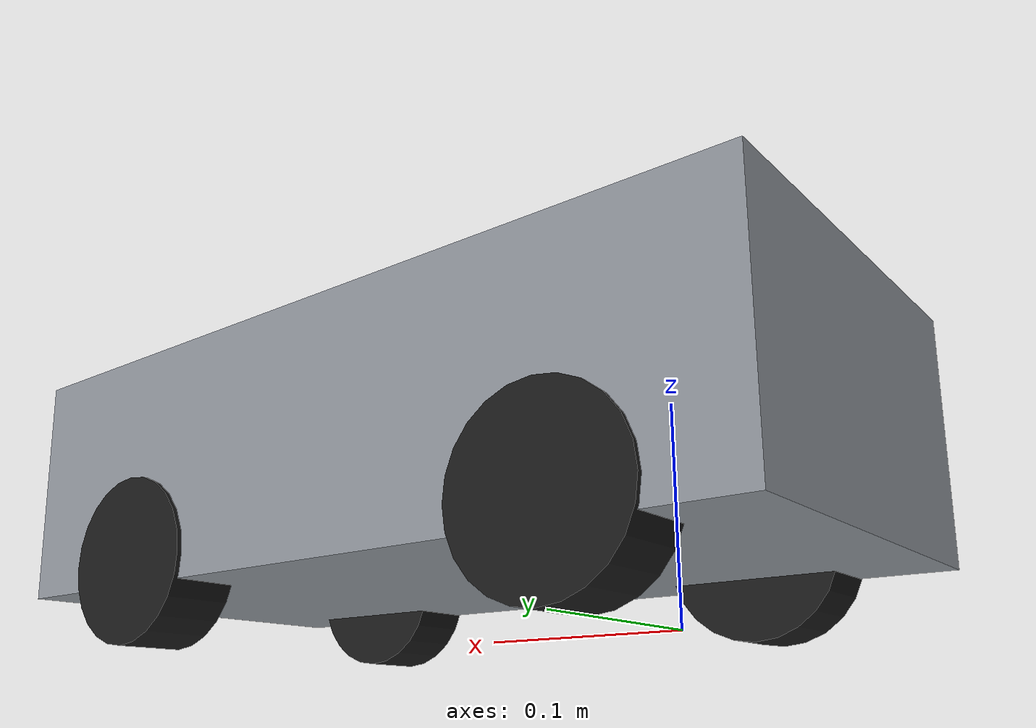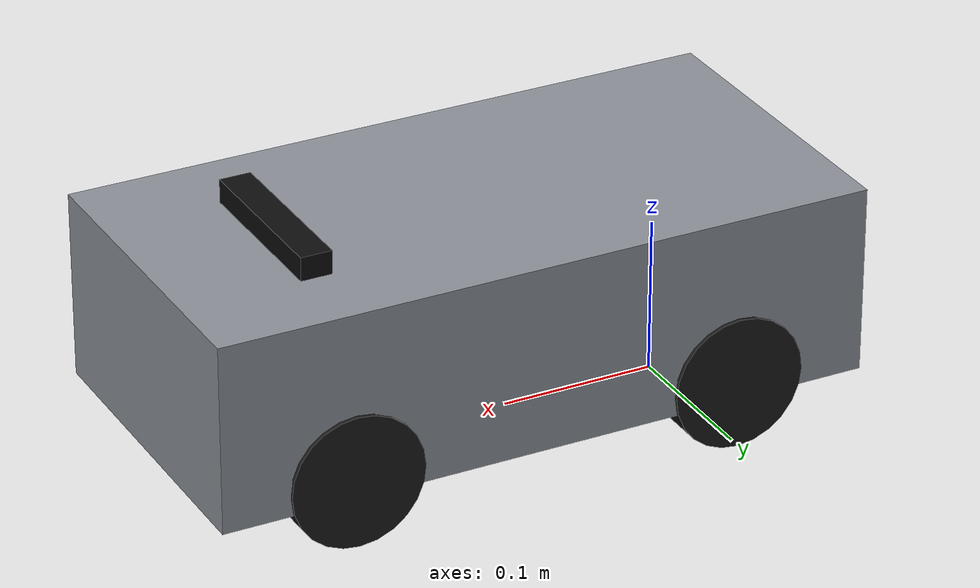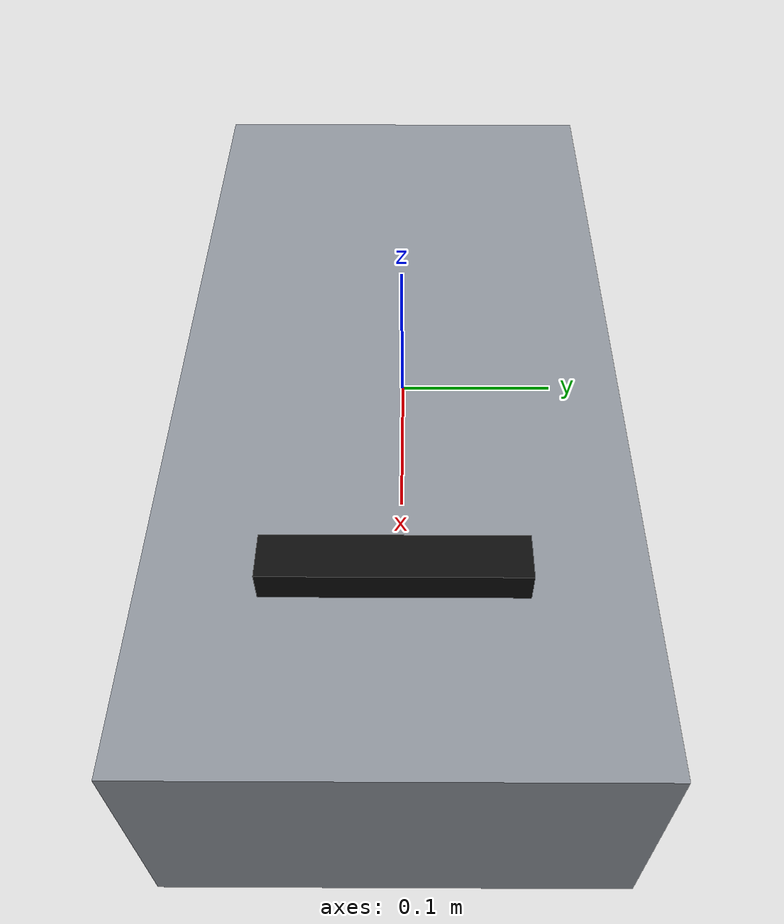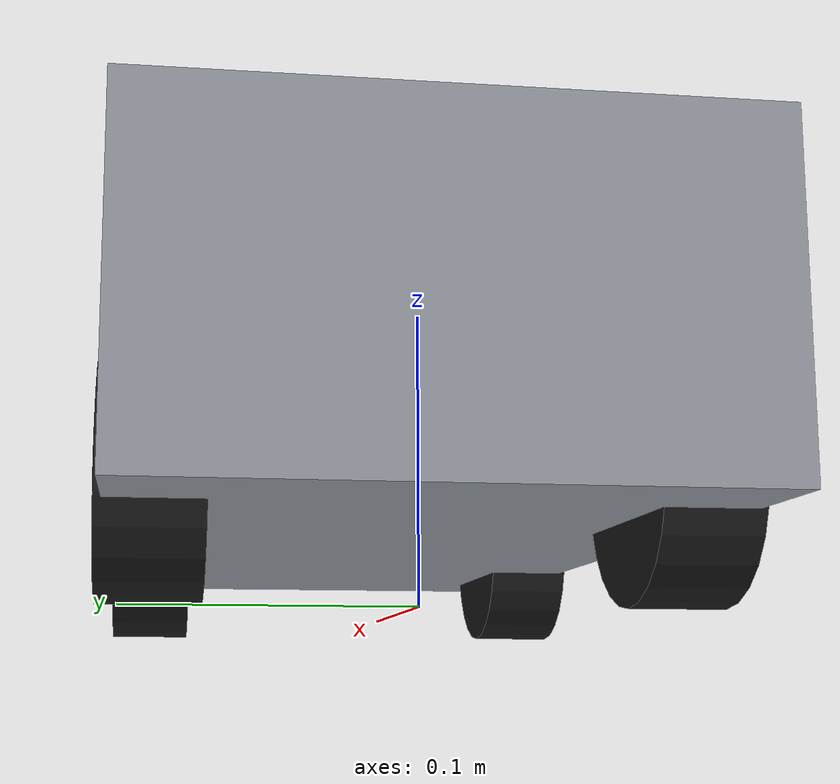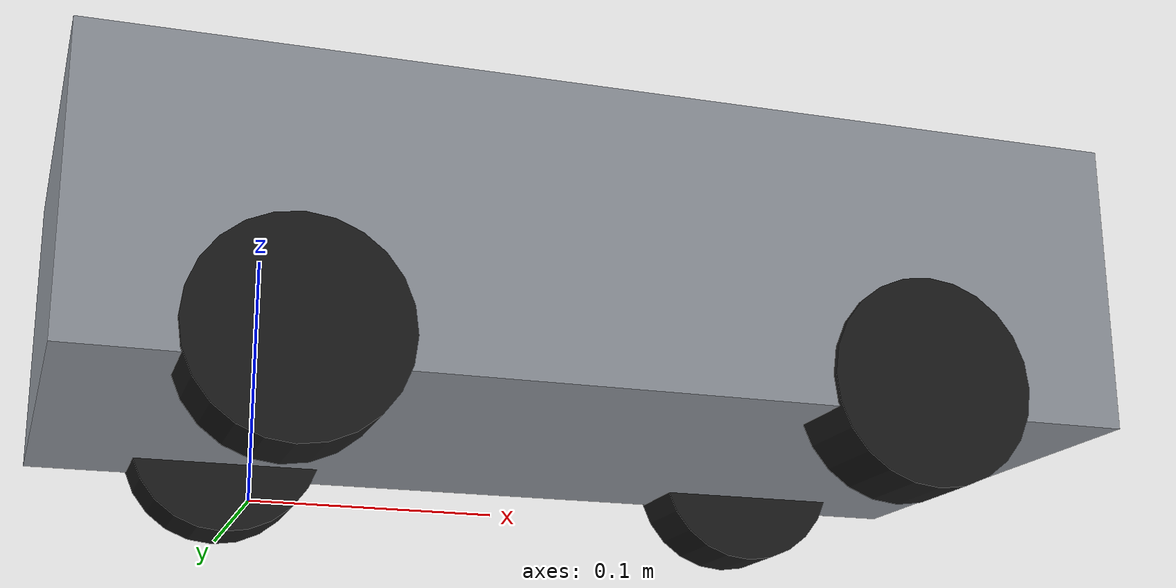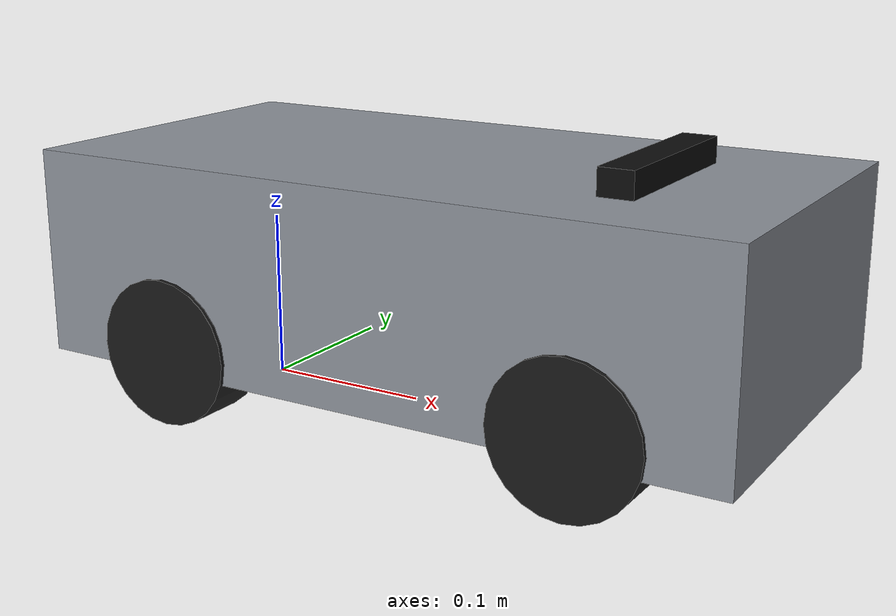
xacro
<?xml version="1.0"?>
<robot name="lego_car" xmlns:xacro="http://www.ros.org/wiki/xacro">

  <!-- Measured -->
  <xacro:property name="wheelbase" value="0.25"/>
  <xacro:property name="track" value="0.18"/>
  <xacro:property name="wheel_radius" value="0.0425"/>
  <xacro:property name="body_length" value="0.42"/>
  <xacro:property name="body_width" value="0.28"/>
  <xacro:property name="body_height" value="0.15"/>
  <!-- 120 cm turning circle: atan(0.25 / 0.6) = 0.395 rad (22.6 deg) -->
  <xacro:property name="steering_limit" value="0.40"/>

  <!-- Camera: assumed 15 cm above the floor, over the front axle -->
  <xacro:arg name="camera_x" default="0.25"/>
  <xacro:arg name="camera_z" default="0.15"/>
  <!-- false removes the rendered cameras; much faster on integrated graphics -->
  <xacro:arg name="cameras" default="true"/>

  <!-- Estimated -->
  <xacro:property name="wheel_width" value="0.035"/>
  <xacro:property name="body_mass" value="1.2"/>
  <xacro:property name="wheel_mass" value="0.05"/>
  <xacro:property name="body_overhang_rear" value="0.085"/>
  <xacro:property name="body_bottom" value="0.03"/>
  <!-- Distance between the two steering pivots, slightly less than the track -->
  <xacro:property name="kingpin_width" value="0.15"/>
  <xacro:property name="max_speed" value="1.0"/>

  <xacro:macro name="box_inertia" params="m x y z">
    <inertial>
      <mass value="${m}"/>
      <inertia ixx="${m * (y * y + z * z) / 12}" ixy="0" ixz="0"
               iyy="${m * (x * x + z * z) / 12}" iyz="0"
               izz="${m * (x * x + y * y) / 12}"/>
    </inertial>
  </xacro:macro>

  <material name="lego_grey"><color rgba="0.55 0.57 0.6 1"/></material>
  <material name="tire"><color rgba="0.1 0.1 0.1 1"/></material>
  <material name="camera_black"><color rgba="0.05 0.05 0.05 1"/></material>

  <!-- Body -->

  <link name="base_link"/>

  <link name="chassis">
    <visual>
      <geometry><box size="${body_length} ${body_width - 2 * wheel_width} ${body_height - body_bottom}"/></geometry>
      <material name="lego_grey"/>
    </visual>
    <collision>
      <geometry><box size="${body_length} ${body_width - 2 * wheel_width} ${body_height - body_bottom}"/></geometry>
    </collision>
    <xacro:box_inertia m="${body_mass}" x="${body_length}"
                       y="${body_width - 2 * wheel_width}" z="${body_height - body_bottom}"/>
  </link>

  <joint name="chassis_joint" type="fixed">
    <parent link="base_link"/>
    <child link="chassis"/>
    <origin xyz="${body_length / 2 - body_overhang_rear} 0 ${(body_height + body_bottom) / 2}"/>
  </joint>

  <!-- Wheels -->

  <xacro:macro name="wheel" params="name">
    <link name="${name}_wheel">
      <visual>
        <origin rpy="${pi / 2} 0 0"/>
        <geometry><cylinder radius="${wheel_radius}" length="${wheel_width}"/></geometry>
        <material name="tire"/>
      </visual>
      <collision>
        <origin rpy="${pi / 2} 0 0"/>
        <geometry><cylinder radius="${wheel_radius}" length="${wheel_width}"/></geometry>
      </collision>
      <inertial>
        <mass value="${wheel_mass}"/>
        <inertia ixx="${wheel_mass * (3 * wheel_radius * wheel_radius + wheel_width * wheel_width) / 12}"
                 ixy="0" ixz="0"
                 iyy="${wheel_mass * wheel_radius * wheel_radius / 2}" iyz="0"
                 izz="${wheel_mass * (3 * wheel_radius * wheel_radius + wheel_width * wheel_width) / 12}"/>
      </inertial>
    </link>
    <gazebo reference="${name}_wheel">
      <collision>
        <surface>
          <friction><ode><mu>1.0</mu><mu2>1.0</mu2></ode></friction>
        </surface>
      </collision>
    </gazebo>
  </xacro:macro>

  <!-- Rear wheels: driven -->
  <xacro:macro name="rear_wheel" params="side y">
    <xacro:wheel name="rear_${side}"/>
    <joint name="rear_${side}_wheel_joint" type="continuous">
      <parent link="base_link"/>
      <child link="rear_${side}_wheel"/>
      <origin xyz="0 ${y} ${wheel_radius}"/>
      <axis xyz="0 1 0"/>
    </joint>
  </xacro:macro>

  <!-- Front wheels: steered through a hub, free rolling -->
  <xacro:macro name="front_wheel" params="side y">
    <link name="front_${side}_hub">
      <inertial>
        <mass value="0.01"/>
        <inertia ixx="1e-6" ixy="0" ixz="0" iyy="1e-6" iyz="0" izz="1e-6"/>
      </inertial>
    </link>
    <joint name="front_${side}_steering_joint" type="revolute">
      <parent link="base_link"/>
      <child link="front_${side}_hub"/>
      <origin xyz="${wheelbase} ${y} ${wheel_radius}"/>
      <axis xyz="0 0 1"/>
      <limit lower="${-steering_limit}" upper="${steering_limit}" effort="5" velocity="3"/>
    </joint>
    <xacro:wheel name="front_${side}"/>
    <joint name="front_${side}_wheel_joint" type="continuous">
      <parent link="front_${side}_hub"/>
      <child link="front_${side}_wheel"/>
      <axis xyz="0 1 0"/>
    </joint>
  </xacro:macro>

  <xacro:rear_wheel side="left" y="${track / 2}"/>
  <xacro:rear_wheel side="right" y="${-track / 2}"/>
  <xacro:front_wheel side="left" y="${track / 2}"/>
  <xacro:front_wheel side="right" y="${-track / 2}"/>

  <!-- RealSense F200 -->

  <link name="camera_link">
    <visual>
      <geometry><box size="0.02 0.11 0.03"/></geometry>
      <material name="camera_black"/>
    </visual>
    <inertial>
      <mass value="0.05"/>
      <inertia ixx="1e-5" ixy="0" ixz="0" iyy="1e-5" iyz="0" izz="1e-5"/>
    </inertial>
  </link>
  <joint name="camera_joint" type="fixed">
    <parent link="base_link"/>
    <child link="camera_link"/>
    <origin xyz="$(arg camera_x) 0 $(arg camera_z)"/>
  </joint>

  <!-- Optical frames: z forward, x right, y down, as image messages expect -->
  <xacro:macro name="optical_frame" params="name">
    <link name="${name}_optical_frame"/>
    <joint name="${name}_optical_joint" type="fixed">
      <parent link="camera_link"/>
      <child link="${name}_optical_frame"/>
      <origin rpy="${-pi / 2} 0 ${-pi / 2}"/>
    </joint>
  </xacro:macro>
  <xacro:optical_frame name="camera_color"/>
  <xacro:optical_frame name="camera_depth"/>

  <xacro:if value="$(arg cameras)">
  <gazebo reference="camera_link">
    <!-- Color: the real camera does 1920x1080; reduced to spare the laptop GPU -->
    <sensor name="color" type="camera">
      <update_rate>30</update_rate>
      <always_on>true</always_on>
      <topic>camera/color/image_raw</topic>
      <camera_info_topic>camera/color/camera_info</camera_info_topic>
      <gz_frame_id>camera_color_optical_frame</gz_frame_id>
      <camera>
        <horizontal_fov>1.2217</horizontal_fov>  <!-- 70 deg -->
        <image><width>640</width><height>360</height><format>R8G8B8</format></image>
        <clip><near>0.05</near><far>10</far></clip>
      </camera>
    </sensor>
    <!-- Depth: 640x480, 68 x 54 deg, 0.2 to 1.0 m -->
    <sensor name="depth" type="depth_camera">
      <update_rate>30</update_rate>
      <always_on>true</always_on>
      <topic>camera/depth/image_rect_raw</topic>
      <camera_info_topic>camera/depth/camera_info</camera_info_topic>
      <gz_frame_id>camera_depth_optical_frame</gz_frame_id>
      <camera>
        <horizontal_fov>1.1868</horizontal_fov>  <!-- 68 deg -->
        <image><width>640</width><height>480</height><format>R_FLOAT32</format></image>
        <clip><near>0.2</near><far>1.0</far></clip>
        <noise><type>gaussian</type><mean>0</mean><stddev>0.005</stddev></noise>
      </camera>
    </sensor>
  </gazebo>
  </xacro:if>

  <!-- IMU (stands in for the MPU-6050) -->

  <link name="imu_link"/>
  <joint name="imu_joint" type="fixed">
    <parent link="base_link"/>
    <child link="imu_link"/>
    <origin xyz="${wheelbase / 2} 0 0.08"/>
  </joint>
  <gazebo reference="imu_link">
    <sensor name="imu" type="imu">
      <update_rate>200</update_rate>
      <always_on>true</always_on>
      <topic>imu/data_raw</topic>
      <gz_frame_id>imu_link</gz_frame_id>
    </sensor>
  </gazebo>

  <!-- Gazebo plugins -->

  <gazebo>
    <plugin filename="gz-sim-ackermann-steering-system"
            name="gz::sim::systems::AckermannSteering">
      <left_joint>rear_left_wheel_joint</left_joint>
      <right_joint>rear_right_wheel_joint</right_joint>
      <left_steering_joint>front_left_steering_joint</left_steering_joint>
      <right_steering_joint>front_right_steering_joint</right_steering_joint>
      <kingpin_width>${kingpin_width}</kingpin_width>
      <steering_limit>${steering_limit}</steering_limit>
      <wheel_base>${wheelbase}</wheel_base>
      <wheel_separation>${track}</wheel_separation>
      <wheel_radius>${wheel_radius}</wheel_radius>
      <min_velocity>${-max_speed}</min_velocity>
      <max_velocity>${max_speed}</max_velocity>
      <min_acceleration>-2</min_acceleration>
      <max_acceleration>2</max_acceleration>
      <topic>cmd_vel</topic>
      <odom_topic>odom</odom_topic>
      <tf_topic>tf</tf_topic>
      <frame_id>odom</frame_id>
      <child_frame_id>base_link</child_frame_id>
      <odom_publish_frequency>30</odom_publish_frequency>
    </plugin>
    <plugin filename="gz-sim-joint-state-publisher-system"
            name="gz::sim::systems::JointStatePublisher">
      <topic>joint_states</topic>
    </plugin>
    <!-- True pose and speed of the car from the physics (not from the
         wheels), on /ground_truth/odom; used by the driving experiment. -->
    <plugin filename="gz-sim-odometry-publisher-system"
            name="gz::sim::systems::OdometryPublisher">
      <odom_frame>room</odom_frame>
      <robot_base_frame>base_link</robot_base_frame>
      <odom_topic>ground_truth/odom</odom_topic>
      <odom_publish_frequency>60</odom_publish_frequency>
      <dimensions>2</dimensions>
    </plugin>
  </gazebo>

</robot>
